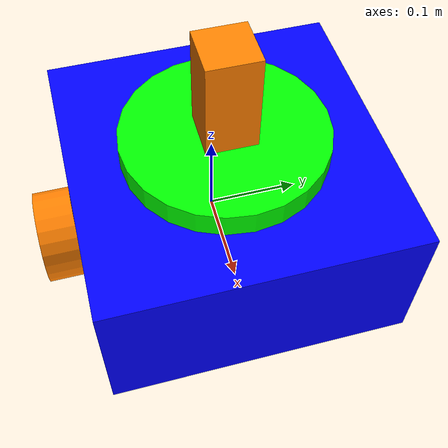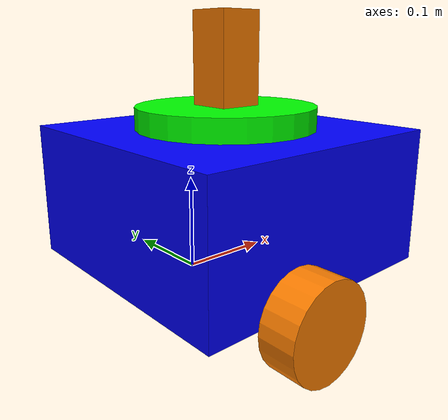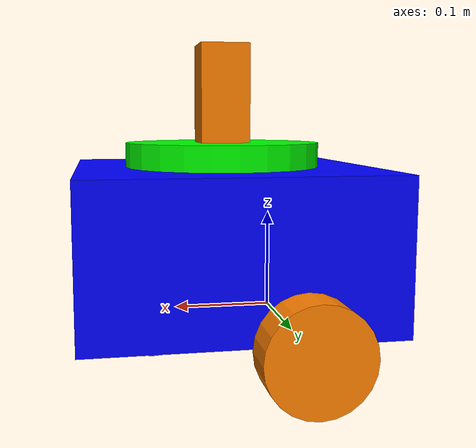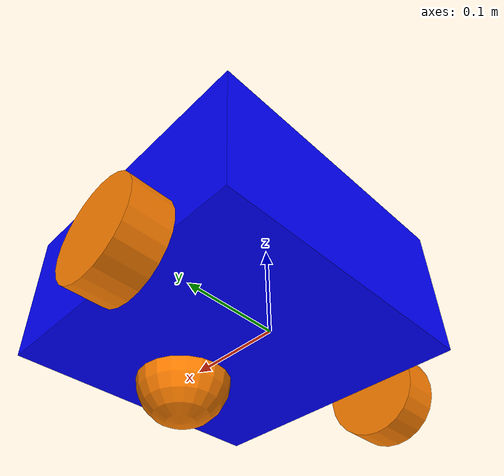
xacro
<?xml version="1.0"?>
<robot xmlns:xacro="http://www.ros.org/wiki/xacro" name="my_robot">

    <!-- Materials -->
    <xacro:include filename="$(find robot_description)/urdf/my_materials.xacro" />

    <!-- BASE LINK -->

    <link name="base_link">
    </link>

    <!-- Box -->
    <link name="box">
        <visual>
            <origin xyz="0.15 0 0.075"/>
            <geometry>
                <box size="0.3 0.3 0.15"/>
            </geometry>
            <material name="blue"/>
        </visual>
        <collision>
            <origin xyz="0.15 0 0.075"/>
            <geometry>
                <box size="0.3 0.3 0.15"/>
            </geometry>
        </collision>
        <inertial>
            <mass value="1.0"/>
            <origin xyz="0 0 0" rpy="0 0 0"/>
            <inertia ixx="0.009375" ixy="0.0" ixz="0.0" iyy="0.009375" iyz="0.0" izz="0.015"/>
        </inertial>
    </link>

    <joint name="box_joint" type="fixed">
        <parent link="base_link"/>
        <child link="box"/>
        <origin xyz="-0.1 0 0"/>
    </joint>

    <!-- Left Wheel -->
    <link name="left_wheel">
        <visual>
            <geometry>
                <cylinder radius="0.05" length="0.04"/>
            </geometry>
            <material name="orange"/>
        </visual>
        <collision>
            <geometry>
                <cylinder radius="0.05" length="0.04"/>
            </geometry>
        </collision>
        <inertial>
            <mass value="0.5"/>
            <origin xyz="0 0 0" rpy="0 0 0"/>
            <inertia ixx="0.00037917" ixy="0.0" ixz="0.0" iyy="0.00037917" iyz="0.0" izz="0.000625"/>
        </inertial>
    </link>

    <joint name="left_wheel_joint" type="continuous">
        <parent link="base_link"/>
        <child link="left_wheel"/>
        <origin xyz="0 0.175 0" rpy="-${pi/2} 0 0" />
        <axis xyz="0 0 1"/>
        <dynamics damping="0.3" friction="0.4"/>
    </joint>

    <!-- Right Wheel -->
    <link name="right_wheel">
        <visual>
            <geometry>
                <cylinder radius="0.05" length="0.04"/>
            </geometry>
            <material name="orange"/>
        </visual>
        <collision>
            <geometry>
                <cylinder radius="0.05" length="0.04"/>
            </geometry>
        </collision>
        <inertial>
            <mass value="0.5"/>
            <origin xyz="0 0 0" rpy="0 0 0"/>
            <inertia ixx="0.00037917" ixy="0.0" ixz="0.0" iyy="0.00037917" iyz="0.0" izz="0.000625"/>
        </inertial>
    </link>

    <joint name="right_wheel_joint" type="continuous">
        <parent link="base_link"/>
        <child link="right_wheel"/>
        <origin xyz="0 -0.175 0" rpy="${pi/2} 0 0" />
        <axis xyz="0 0 -1"/>
        <dynamics damping="0.3" friction="0.4"/>
    </joint>

    <!-- Caster Wheel -->
    <link name="caster_wheel">
        <visual>
            <geometry>
                <sphere radius="0.05"/>
            </geometry>
            <material name="orange"/>
        </visual>
        <collision>
            <geometry>
                <sphere radius="0.05"/>
            </geometry>
        </collision>
        <inertial>
            <mass value="1.5"/>
            <origin xyz="0 0 0" rpy="0 0 0"/>
            <inertia ixx="0.0015" ixy="0.0" ixz="0.0" iyy="0.0015" iyz="0.0" izz="0.0015"/>
        </inertial>
    </link>

    <joint name="caster_wheel_joint" type="fixed">
        <parent link="base_link"/>
        <child link="caster_wheel"/>
        <origin xyz="0.125 0 0"/>
    </joint>

    <!-- Plate -->
    <link name="plate">
        <visual>
            <geometry>
                <cylinder radius="0.1" length="0.05"/>
            </geometry>
            <origin xyz="0 0 0" rpy="0 0 0"/>
            <material name="green"/>
        </visual>
        <collision>
            <geometry>
                <cylinder radius="0.1" length="0.05"/>
            </geometry>
        </collision>
        <inertial>
            <mass value="0.02"/>
            <origin xyz="0 0 0" rpy="0 0 0"/>
            <inertia ixx="0.01" ixy="0.0" ixz="0.0" iyy="0.01" iyz="0.0" izz="0.01"/>
        </inertial>
    </link>

    <joint name="plate_joint" type="fixed">
        <parent link="box"/>
        <child link="plate"/>
        <origin xyz="0.15 0 0.15" rpy="0 0 0"/>
    </joint>

    <!-- Camera -->
    <xacro:include filename="$(find robot_description)/urdf/my_camera.xacro" />
    <xacro:camera_sensor parent_link="plate" camera_name="camera" origin_xyz="0 0 0.075" origin_rpy="0 0 0" />

    <!-- Gazebo -->
    <xacro:include filename="$(find robot_description)/urdf/my_gazebo.xacro" />

</robot>

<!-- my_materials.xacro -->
<robot xmlns:xacro="http://www.ros.org/wiki/xacro">

    <!-- Material -->
    <material name="green">
        <color rgba="0 1 0 1"/>
        <gazebo reference="green">
            <color>0 1 0 1</color>
        </gazebo>
    </material>

    <material name="orange">
        <color rgba="1 0.5 0 1"/>
        <gazebo reference="orange">
            <color>1 0.5 0 1</color>
        </gazebo>
    </material>

    <material name="blue">
        <color rgba="0 0 1 1"/>
        <gazebo reference="blue">
            <color>0 0 1 1</color>
        </gazebo>
    </material>

    <material name="white">
        <color rgba="1 1 1 1"/>
        <gazebo reference="white">
            <color>1 1 1 1</color>
        </gazebo>
    </material>

</robot>

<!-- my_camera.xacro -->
<robot xmlns:xacro="http://www.ros.org/wiki/xacro">
    <!-- Camera -->
    <xacro:macro name="camera_sensor" params="parent_link camera_name origin_xyz origin_rpy">
        <link name="${camera_name}_link">
            <visual>
                <geometry>
                    <box size="0.05 0.05 0.1"/>
                </geometry>
                <material name="orange"/>
                <origin xyz="0 0 0" rpy="0 0 0"/>
            </visual>
            <collision>
                <geometry>
                    <box size="0.05 0.05 0.1"/>
                </geometry>
            </collision>
            <inertial>
                <mass value="0.01"/>
                <origin xyz="0 0 0" rpy="0 0 0"/>
                <inertia ixx="0.0001" ixy="0.0" ixz="0.0" iyy="0.0001" iyz="0.0" izz="0.0001"/>
            </inertial>
        </link>

        <joint name="${parent_link}_${camera_name}_joint" type="fixed">
            <parent link="${parent_link}"/>
            <child link="${camera_name}_link"/>
            <origin xyz="${origin_xyz}" rpy="${origin_rpy}"/>
        </joint>

    <!-- Camera Sensor Plugin -->
        <gazebo reference="${camera_name}_link">
            <sensor type="camera" name="${camera_name}">
                <update_rate>20</update_rate>
                <visualize>true</visualize>
                <camera>
                    <horizontal_fov>1.3962634</horizontal_fov>
                    <image>
                        <width>640</width>
                        <height>480</height>
                        <format>R8G8B8</format>
                    </image>
                    <clip>
                        <near>0.01</near>
                        <far>50</far>
                    </clip>
                    <noise>
                        <type>gaussian</type>
                        <mean>0.0</mean>
                        <stddev>0.007</stddev>
                    </noise>
                </camera>
                <plugin name="gazebo_ros_camera" filename="libgazebo_ros_camera.so">
                    <always_on>true</always_on>
                    <update_rate>30.0</update_rate>
                    <camera_name>${camera_name}</camera_name>
                </plugin>
            </sensor>
        </gazebo>
    </xacro:macro>
</robot>
